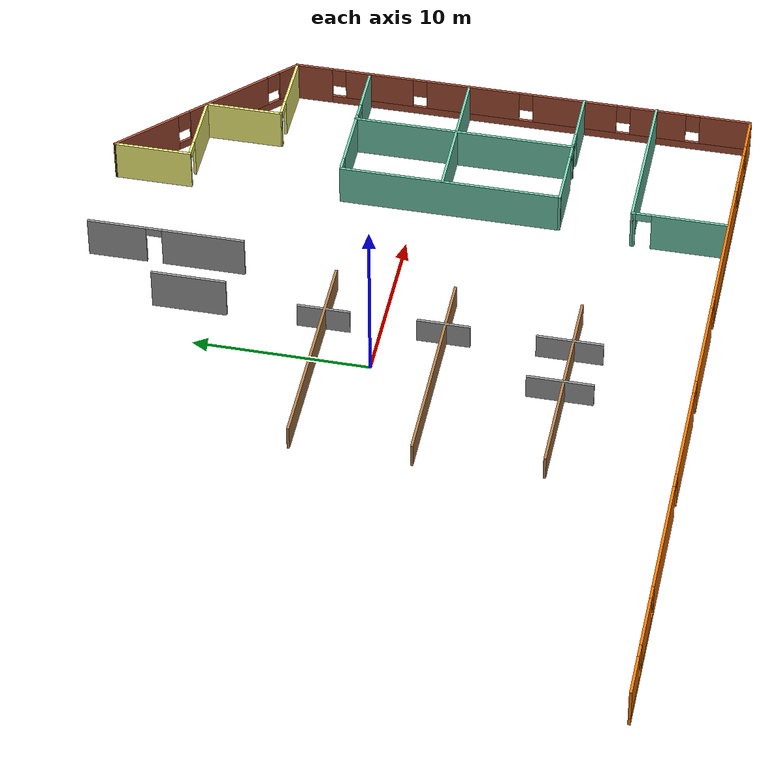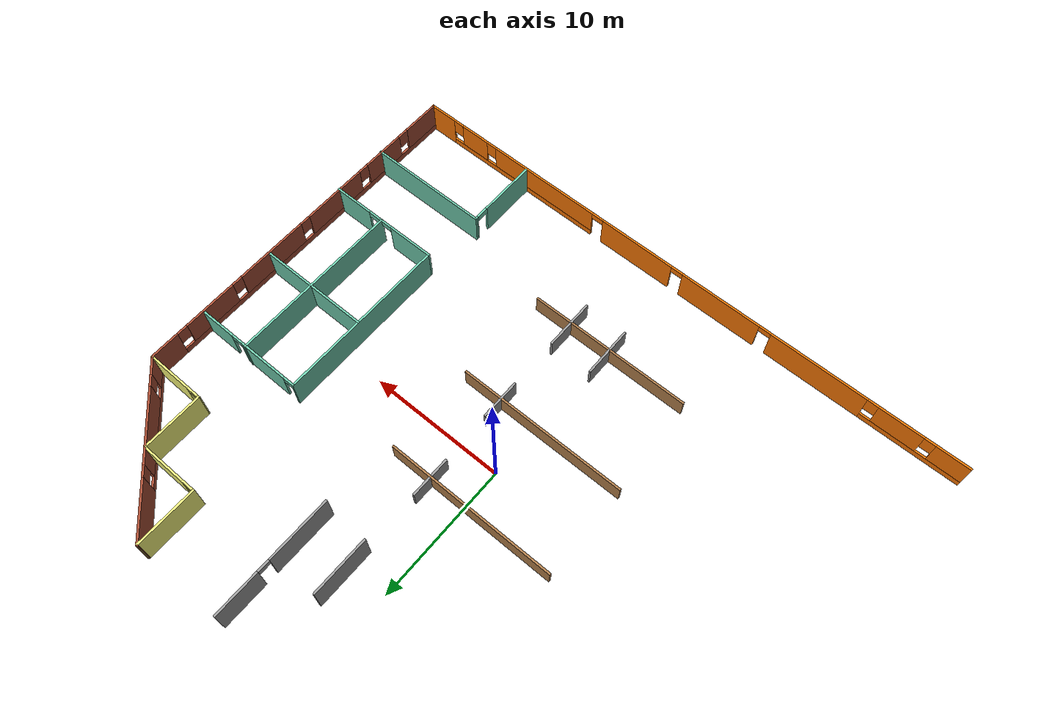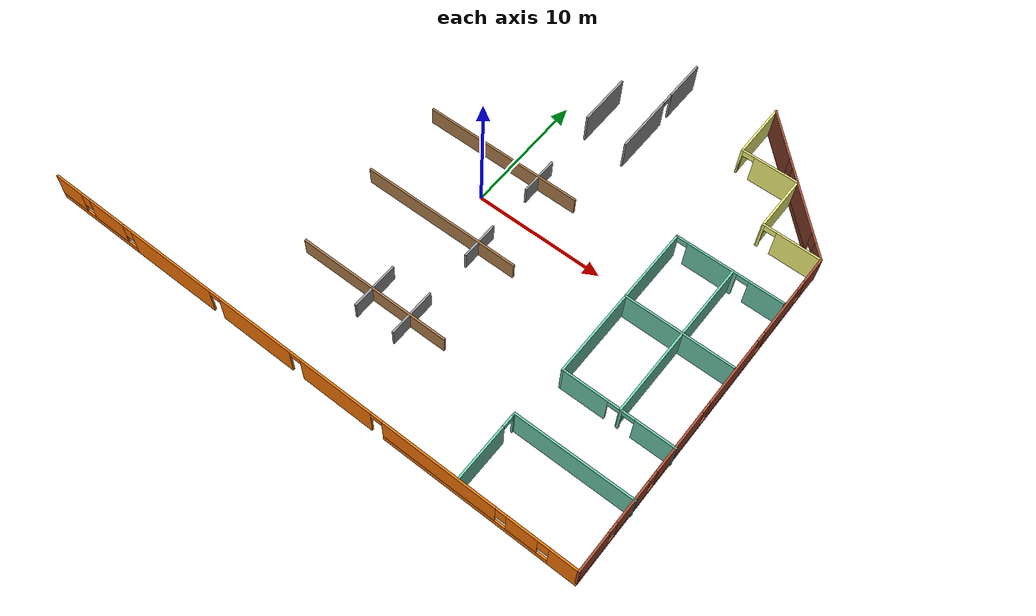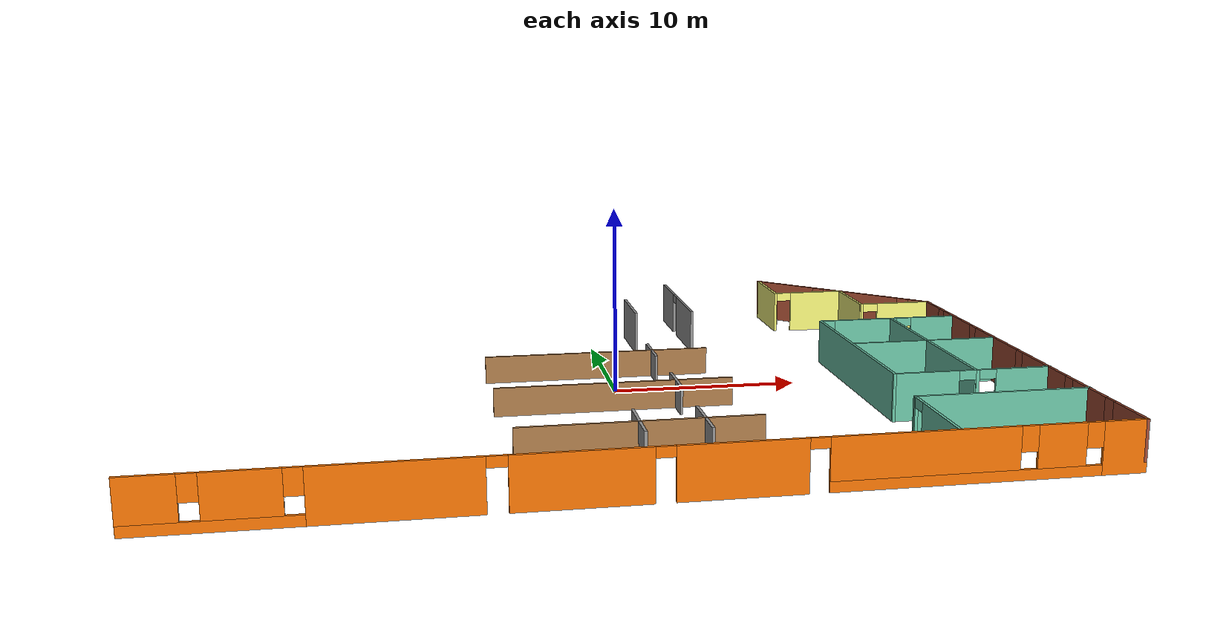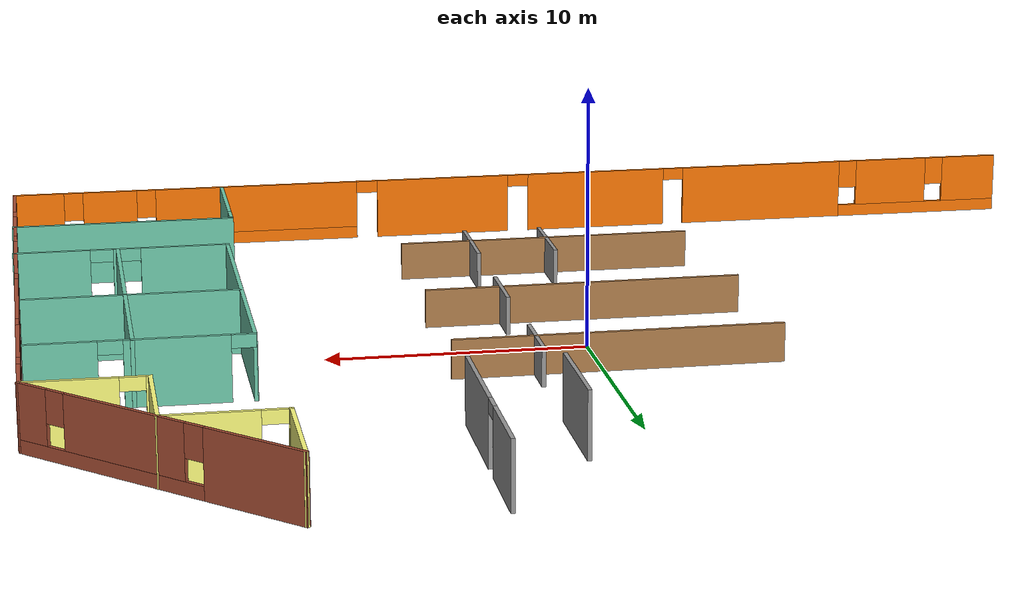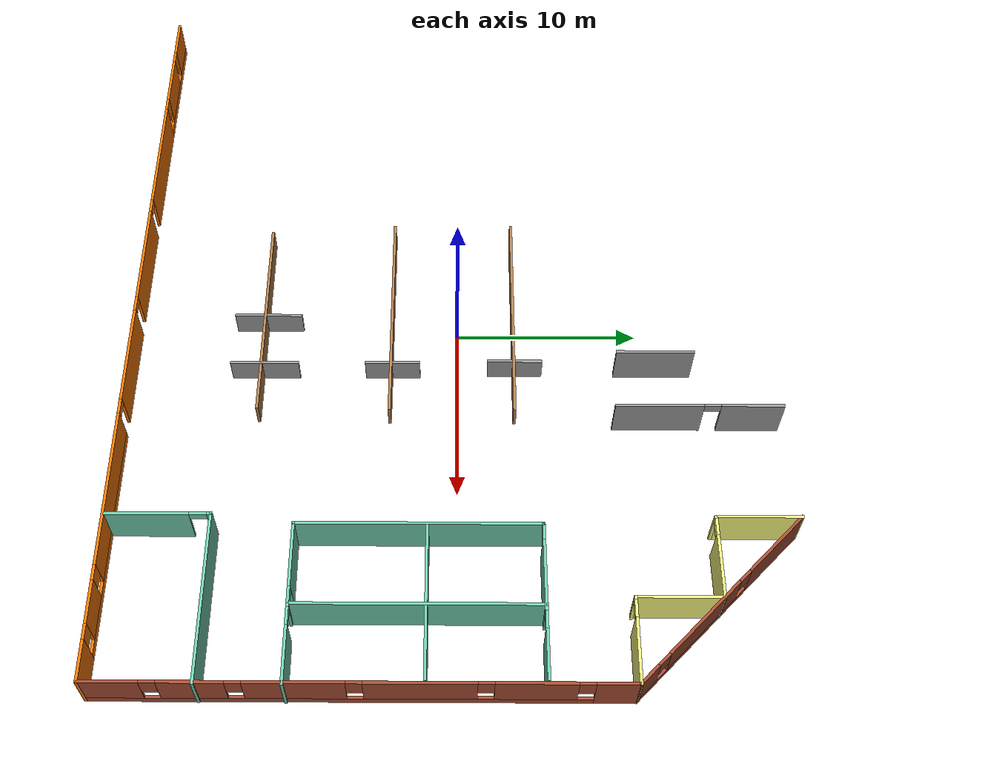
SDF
<sdf version="1.6">
 <model name="Building">
  <pose>-0.640949 -0.136495 0 0 -0 0</pose>
  <link name="Wall_17">
   <collision name="Wall_17_Collision">
    <geometry><box><size>9 0.15 2.5</size></box></geometry>
    <pose>0 0 1.25 0 -0 0</pose>
   </collision>
   <visual name="Wall_17_Visual">
    <pose>0 0 1.25 0 -0 0</pose>
    <geometry><box><size>9 0.15 2.5</size></box></geometry>
    <material>
     <script><uri>file://media/materials/scripts/gazebo.material</uri><name>Gazebo/Grey</name></script>
     <ambient>0.435294 0.796078 0.67451 1</ambient>
    </material>
    <meta><layer>0</layer></meta>
   </visual>
   <pose>17.4874 -12.3073 0 0 -0 3.14159</pose>
  </link>
  <link name="Wall_18">
   <pose>13.0624 -14.9823 0 0 0 -1.5708</pose>
   <visual name="Wall_18_Visual_0">
    <pose>-2.60998 0 1.25 0 -0 0</pose>
    <geometry><box><size>0.280034 0.15 2.5</size></box></geometry>
    <material>
     <script><uri>file://media/materials/scripts/gazebo.material</uri><name>Gazebo/Grey</name></script>
     <ambient>0.435294 0.796078 0.67451 1</ambient>
    </material>
    <meta><layer>0</layer></meta>
   </visual>
   <collision name="Wall_18_Collision_0">
    <geometry><box><size>0.280034 0.15 2.5</size></box></geometry>
    <pose>-2.60998 0 1.25 0 -0 0</pose>
   </collision>
   <visual name="Wall_18_Visual_1">
    <pose>0.590017 0 1.25 0 -0 0</pose>
    <geometry><box><size>4.31997 0.15 2.5</size></box></geometry>
    <material>
     <script><uri>file://media/materials/scripts/gazebo.material</uri><name>Gazebo/Grey</name></script>
     <ambient>0.435294 0.796078 0.67451 1</ambient>
    </material>
    <meta><layer>0</layer></meta>
   </visual>
   <collision name="Wall_18_Collision_1">
    <geometry><box><size>4.31997 0.15 2.5</size></box></geometry>
    <pose>0.590017 0 1.25 0 -0 0</pose>
   </collision>
   <visual name="Wall_18_Visual_2">
    <pose>-2.01997 0 2.25 0 -0 0</pose>
    <geometry><box><size>0.9 0.15 0.5</size></box></geometry>
    <material>
     <script><uri>file://media/materials/scripts/gazebo.material</uri><name>Gazebo/Grey</name></script>
     <ambient>0.435294 0.796078 0.67451 1</ambient>
    </material>
    <meta><layer>0</layer></meta>
   </visual>
   <collision name="Wall_18_Collision_2">
    <geometry><box><size>0.9 0.15 0.5</size></box></geometry>
    <pose>-2.01997 0 2.25 0 -0 0</pose>
   </collision>
  </link>
  <link name="Wall_2">
   <pose>17.4946 13.197 0 0 0 -0.785398</pose>
   <visual name="Wall_2_Visual_0">
    <pose>-4.12695 0 1.25 0 -0 0</pose>
    <geometry><box><size>4.24611 0.15 2.5</size></box></geometry>
    <material>
     <script><uri>file://media/materials/scripts/gazebo.material</uri><name>Gazebo/Bricks</name></script>
     <ambient>0.333333 0.666667 1 1</ambient>
    </material>
    <meta><layer>0</layer></meta>
   </visual>
   <collision name="Wall_2_Collision_0">
    <geometry><box><size>4.24611 0.15 2.5</size></box></geometry>
    <pose>-4.12695 0 1.25 0 -0 0</pose>
   </collision>
   <visual name="Wall_2_Visual_1">
    <pose>2.12305 0 0.25 0 -0 0</pose>
    <geometry><box><size>8.25389 0.15 0.5</size></box></geometry>
    <material>
     <script><uri>file://media/materials/scripts/gazebo.material</uri><name>Gazebo/Bricks</name></script>
     <ambient>0.333333 0.666667 1 1</ambient>
    </material>
    <meta><layer>0</layer></meta>
   </visual>
   <collision name="Wall_2_Collision_1">
    <geometry><box><size>8.25389 0.15 0.5</size></box></geometry>
    <pose>2.12305 0 0.25 0 -0 0</pose>
   </collision>
   <visual name="Wall_2_Visual_2">
    <pose>1.43985 0 1.5 0 -0 0</pose>
    <geometry><box><size>5.28749 0.15 2</size></box></geometry>
    <material>
     <script><uri>file://media/materials/scripts/gazebo.material</uri><name>Gazebo/Bricks</name></script>
     <ambient>0.333333 0.666667 1 1</ambient>
    </material>
    <meta><layer>0</layer></meta>
   </visual>
   <collision name="Wall_2_Collision_2">
    <geometry><box><size>5.28749 0.15 2</size></box></geometry>
    <pose>1.43985 0 1.5 0 -0 0</pose>
   </collision>
   <visual name="Wall_2_Visual_3">
    <pose>5.5668 0 1.5 0 -0 0</pose>
    <geometry><box><size>1.3664 0.15 2</size></box></geometry>
    <material>
     <script><uri>file://media/materials/scripts/gazebo.material</uri><name>Gazebo/Bricks</name></script>
     <ambient>0.333333 0.666667 1 1</ambient>
    </material>
    <meta><layer>0</layer></meta>
   </visual>
   <collision name="Wall_2_Collision_3">
    <geometry><box><size>1.3664 0.15 2</size></box></geometry>
    <pose>5.5668 0 1.5 0 -0 0</pose>
   </collision>
   <visual name="Wall_2_Visual_4">
    <pose>-1.60389 0 1.9 0 -0 0</pose>
    <geometry><box><size>0.8 0.15 1.2</size></box></geometry>
    <material>
     <script><uri>file://media/materials/scripts/gazebo.material</uri><name>Gazebo/Bricks</name></script>
     <ambient>0.333333 0.666667 1 1</ambient>
    </material>
    <meta><layer>0</layer></meta>
   </visual>
   <collision name="Wall_2_Collision_4">
    <geometry><box><size>0.8 0.15 1.2</size></box></geometry>
    <pose>-1.60389 0 1.9 0 -0 0</pose>
   </collision>
   <visual name="Wall_2_Visual_5">
    <pose>4.4836 0 1.9 0 -0 0</pose>
    <geometry><box><size>0.8 0.15 1.2</size></box></geometry>
    <material>
     <script><uri>file://media/materials/scripts/gazebo.material</uri><name>Gazebo/Bricks</name></script>
     <ambient>0.333333 0.666667 1 1</ambient>
    </material>
    <meta><layer>0</layer></meta>
   </visual>
   <collision name="Wall_2_Collision_5">
    <geometry><box><size>0.8 0.15 1.2</size></box></geometry>
    <pose>4.4836 0 1.9 0 -0 0</pose>
   </collision>
  </link>
  <link name="Wall_25">
   <collision name="Wall_25_Collision">
    <geometry><box><size>4.5 0.15 2.5</size></box></geometry>
    <pose>0 0 1.25 0 -0 0</pose>
   </collision>
   <visual name="Wall_25_Visual">
    <pose>0 0 1.25 0 -0 0</pose>
    <geometry><box><size>4.5 0.15 2.5</size></box></geometry>
    <material>
     <script><uri>file://media/materials/scripts/gazebo.material</uri><name>Gazebo/Grey</name></script>
     <ambient>1 1 0.498039 1</ambient>
    </material>
    <meta><layer>0</layer></meta>
   </visual>
   <pose>13.1282 15.3884 0 0 0 -1.5708</pose>
  </link>
  <link name="Wall_26">
   <pose>15.3032 13.2134 0 0 -0 0</pose>
   <visual name="Wall_26_Visual_0">
    <pose>-2.16279 0 1.25 0 -0 0</pose>
    <geometry><box><size>0.174413 0.15 2.5</size></box></geometry>
    <material>
     <script><uri>file://media/materials/scripts/gazebo.material</uri><name>Gazebo/Grey</name></script>
     <ambient>1 1 0.498039 1</ambient>
    </material>
    <meta><layer>0</layer></meta>
   </visual>
   <collision name="Wall_26_Collision_0">
    <geometry><box><size>0.174413 0.15 2.5</size></box></geometry>
    <pose>-2.16279 0 1.25 0 -0 0</pose>
   </collision>
   <visual name="Wall_26_Visual_1">
    <pose>0.537207 0 1.25 0 -0 0</pose>
    <geometry><box><size>3.42559 0.15 2.5</size></box></geometry>
    <material>
     <script><uri>file://media/materials/scripts/gazebo.material</uri><name>Gazebo/Grey</name></script>
     <ambient>1 1 0.498039 1</ambient>
    </material>
    <meta><layer>0</layer></meta>
   </visual>
   <collision name="Wall_26_Collision_1">
    <geometry><box><size>3.42559 0.15 2.5</size></box></geometry>
    <pose>0.537207 0 1.25 0 -0 0</pose>
   </collision>
   <visual name="Wall_26_Visual_2">
    <pose>-1.62559 0 2.25 0 -0 0</pose>
    <geometry><box><size>0.9 0.15 0.5</size></box></geometry>
    <material>
     <script><uri>file://media/materials/scripts/gazebo.material</uri><name>Gazebo/Grey</name></script>
     <ambient>1 1 0.498039 1</ambient>
    </material>
    <meta><layer>0</layer></meta>
   </visual>
   <collision name="Wall_26_Collision_2">
    <geometry><box><size>0.9 0.15 0.5</size></box></geometry>
    <pose>-1.62559 0 2.25 0 -0 0</pose>
   </collision>
  </link>
  <link name="Wall_27">
   <collision name="Wall_27_Collision">
    <geometry><box><size>4.5 0.15 2.5</size></box></geometry>
    <pose>0 0 1.25 0 -0 0</pose>
   </collision>
   <visual name="Wall_27_Visual">
    <pose>0 0 1.25 0 -0 0</pose>
    <geometry><box><size>4.5 0.15 2.5</size></box></geometry>
    <material>
     <script><uri>file://media/materials/scripts/gazebo.material</uri><name>Gazebo/Grey</name></script>
     <ambient>1 1 0.498039 1</ambient>
    </material>
    <meta><layer>0</layer></meta>
   </visual>
   <pose>17.4782 11.0384 0 0 0 -1.5708</pose>
  </link>
  <link name="Wall_28">
   <pose>19.6696 8.84697 0 0 0 -0.007477</pose>
   <visual name="Wall_28_Visual_0">
    <pose>-2.15512 0 1.25 0 -0 0</pose>
    <geometry><box><size>0.222645 0.15 2.5</size></box></geometry>
    <material>
     <script><uri>file://media/materials/scripts/gazebo.material</uri><name>Gazebo/Grey</name></script>
     <ambient>1 1 0.498039 1</ambient>
    </material>
    <meta><layer>0</layer></meta>
   </visual>
   <collision name="Wall_28_Collision_0">
    <geometry><box><size>0.222645 0.15 2.5</size></box></geometry>
    <pose>-2.15512 0 1.25 0 -0 0</pose>
   </collision>
   <visual name="Wall_28_Visual_1">
    <pose>0.561323 0 1.25 0 -0 0</pose>
    <geometry><box><size>3.41025 0.15 2.5</size></box></geometry>
    <material>
     <script><uri>file://media/materials/scripts/gazebo.material</uri><name>Gazebo/Grey</name></script>
     <ambient>1 1 0.498039 1</ambient>
    </material>
    <meta><layer>0</layer></meta>
   </visual>
   <collision name="Wall_28_Collision_1">
    <geometry><box><size>3.41025 0.15 2.5</size></box></geometry>
    <pose>0.561323 0 1.25 0 -0 0</pose>
   </collision>
   <visual name="Wall_28_Visual_2">
    <pose>-1.5938 0 2.25 0 -0 0</pose>
    <geometry><box><size>0.9 0.15 0.5</size></box></geometry>
    <material>
     <script><uri>file://media/materials/scripts/gazebo.material</uri><name>Gazebo/Grey</name></script>
     <ambient>1 1 0.498039 1</ambient>
    </material>
    <meta><layer>0</layer></meta>
   </visual>
   <collision name="Wall_28_Collision_2">
    <geometry><box><size>0.9 0.15 0.5</size></box></geometry>
    <pose>-1.5938 0 2.25 0 -0 0</pose>
   </collision>
  </link>
  <link name="Wall_3">
   <pose>21.861 -4.46942 0 0 0 -1.5708</pose>
   <visual name="Wall_3_Visual_0">
    <pose>-12.2912 0 1.25 0 -0 0</pose>
    <geometry><box><size>2.16764 0.15 2.5</size></box></geometry>
    <material>
     <script><uri>file://media/materials/scripts/gazebo.material</uri><name>Gazebo/Bricks</name></script>
     <ambient>0.333333 0.666667 1 1</ambient>
    </material>
    <meta><layer>0</layer></meta>
   </visual>
   <collision name="Wall_3_Collision_0">
    <geometry><box><size>2.16764 0.15 2.5</size></box></geometry>
    <pose>-12.2912 0 1.25 0 -0 0</pose>
   </collision>
   <visual name="Wall_3_Visual_1">
    <pose>1.08382 0 0.25 0 -0 0</pose>
    <geometry><box><size>24.5824 0.15 0.5</size></box></geometry>
    <material>
     <script><uri>file://media/materials/scripts/gazebo.material</uri><name>Gazebo/Bricks</name></script>
     <ambient>0.333333 0.666667 1 1</ambient>
    </material>
    <meta><layer>0</layer></meta>
   </visual>
   <collision name="Wall_3_Collision_1">
    <geometry><box><size>24.5824 0.15 0.5</size></box></geometry>
    <pose>1.08382 0 0.25 0 -0 0</pose>
   </collision>
   <visual name="Wall_3_Visual_2">
    <pose>-8.40981 0 1.5 0 -0 0</pose>
    <geometry><box><size>3.99511 0.15 2</size></box></geometry>
    <material>
     <script><uri>file://media/materials/scripts/gazebo.material</uri><name>Gazebo/Bricks</name></script>
     <ambient>0.333333 0.666667 1 1</ambient>
    </material>
    <meta><layer>0</layer></meta>
   </visual>
   <collision name="Wall_3_Collision_2">
    <geometry><box><size>3.99511 0.15 2</size></box></geometry>
    <pose>-8.40981 0 1.5 0 -0 0</pose>
   </collision>
   <visual name="Wall_3_Visual_3">
    <pose>-2.88127 0 1.5 0 -0 0</pose>
    <geometry><box><size>5.46198 0.15 2</size></box></geometry>
    <material>
     <script><uri>file://media/materials/scripts/gazebo.material</uri><name>Gazebo/Bricks</name></script>
     <ambient>0.333333 0.666667 1 1</ambient>
    </material>
    <meta><layer>0</layer></meta>
   </visual>
   <collision name="Wall_3_Collision_3">
    <geometry><box><size>5.46198 0.15 2</size></box></geometry>
    <pose>-2.88127 0 1.5 0 -0 0</pose>
   </collision>
   <visual name="Wall_3_Visual_4">
    <pose>3.10235 0 1.5 0 -0 0</pose>
    <geometry><box><size>4.90526 0.15 2</size></box></geometry>
    <material>
     <script><uri>file://media/materials/scripts/gazebo.material</uri><name>Gazebo/Bricks</name></script>
     <ambient>0.333333 0.666667 1 1</ambient>
    </material>
    <meta><layer>0</layer></meta>
   </visual>
   <collision name="Wall_3_Collision_4">
    <geometry><box><size>4.90526 0.15 2</size></box></geometry>
    <pose>3.10235 0 1.5 0 -0 0</pose>
   </collision>
   <visual name="Wall_3_Visual_5">
    <pose>7.97254 0 1.5 0 -0 0</pose>
    <geometry><box><size>3.23512 0.15 2</size></box></geometry>
    <material>
     <script><uri>file://media/materials/scripts/gazebo.material</uri><name>Gazebo/Bricks</name></script>
     <ambient>0.333333 0.666667 1 1</ambient>
    </material>
    <meta><layer>0</layer></meta>
   </visual>
   <collision name="Wall_3_Collision_5">
    <geometry><box><size>3.23512 0.15 2</size></box></geometry>
    <pose>7.97254 0 1.5 0 -0 0</pose>
   </collision>
   <visual name="Wall_3_Visual_6">
    <pose>11.8826 0 1.5 0 -0 0</pose>
    <geometry><box><size>2.9849 0.15 2</size></box></geometry>
    <material>
     <script><uri>file://media/materials/scripts/gazebo.material</uri><name>Gazebo/Bricks</name></script>
     <ambient>0.333333 0.666667 1 1</ambient>
    </material>
    <meta><layer>0</layer></meta>
   </visual>
   <collision name="Wall_3_Collision_6">
    <geometry><box><size>2.9849 0.15 2</size></box></geometry>
    <pose>11.8826 0 1.5 0 -0 0</pose>
   </collision>
   <visual name="Wall_3_Visual_7">
    <pose>-10.8074 0 1.9 0 -0 0</pose>
    <geometry><box><size>0.8 0.15 1.2</size></box></geometry>
    <material>
     <script><uri>file://media/materials/scripts/gazebo.material</uri><name>Gazebo/Bricks</name></script>
     <ambient>0.333333 0.666667 1 1</ambient>
    </material>
    <meta><layer>0</layer></meta>
   </visual>
   <collision name="Wall_3_Collision_7">
    <geometry><box><size>0.8 0.15 1.2</size></box></geometry>
    <pose>-10.8074 0 1.9 0 -0 0</pose>
   </collision>
   <visual name="Wall_3_Visual_8">
    <pose>-6.01226 0 1.9 0 -0 0</pose>
    <geometry><box><size>0.8 0.15 1.2</size></box></geometry>
    <material>
     <script><uri>file://media/materials/scripts/gazebo.material</uri><name>Gazebo/Bricks</name></script>
     <ambient>0.333333 0.666667 1 1</ambient>
    </material>
    <meta><layer>0</layer></meta>
   </visual>
   <collision name="Wall_3_Collision_8">
    <geometry><box><size>0.8 0.15 1.2</size></box></geometry>
    <pose>-6.01226 0 1.9 0 -0 0</pose>
   </collision>
   <visual name="Wall_3_Visual_9">
    <pose>0.249724 0 1.9 0 -0 0</pose>
    <geometry><box><size>0.8 0.15 1.2</size></box></geometry>
    <material>
     <script><uri>file://media/materials/scripts/gazebo.material</uri><name>Gazebo/Bricks</name></script>
     <ambient>0.333333 0.666667 1 1</ambient>
    </material>
    <meta><layer>0</layer></meta>
   </visual>
   <collision name="Wall_3_Collision_9">
    <geometry><box><size>0.8 0.15 1.2</size></box></geometry>
    <pose>0.249724 0 1.9 0 -0 0</pose>
   </collision>
   <visual name="Wall_3_Visual_10">
    <pose>5.95498 0 1.9 0 -0 0</pose>
    <geometry><box><size>0.8 0.15 1.2</size></box></geometry>
    <material>
     <script><uri>file://media/materials/scripts/gazebo.material</uri><name>Gazebo/Bricks</name></script>
     <ambient>0.333333 0.666667 1 1</ambient>
    </material>
    <meta><layer>0</layer></meta>
   </visual>
   <collision name="Wall_3_Collision_10">
    <geometry><box><size>0.8 0.15 1.2</size></box></geometry>
    <pose>5.95498 0 1.9 0 -0 0</pose>
   </collision>
   <visual name="Wall_3_Visual_11">
    <pose>9.9901 0 1.9 0 -0 0</pose>
    <geometry><box><size>0.8 0.15 1.2</size></box></geometry>
    <material>
     <script><uri>file://media/materials/scripts/gazebo.material</uri><name>Gazebo/Bricks</name></script>
     <ambient>0.333333 0.666667 1 1</ambient>
    </material>
    <meta><layer>0</layer></meta>
   </visual>
   <collision name="Wall_3_Collision_11">
    <geometry><box><size>0.8 0.15 1.2</size></box></geometry>
    <pose>9.9901 0 1.9 0 -0 0</pose>
   </collision>
  </link>
  <link name="Wall_32">
   <pose>6.59732 13.025 0 0 -0 1.5708</pose>
   <visual name="Wall_32_Visual_0">
    <pose>-2.13402 0 1.25 0 -0 0</pose>
    <geometry><box><size>4.73195 0.15 2.5</size></box></geometry>
    <material>
     <script><uri>file://media/materials/scripts/gazebo.material</uri><name>Gazebo/Grey</name></script>
     <ambient>1 1 1 1</ambient>
    </material>
    <meta><layer>0</layer></meta>
   </visual>
   <collision name="Wall_32_Collision_0">
    <geometry><box><size>4.73195 0.15 2.5</size></box></geometry>
    <pose>-2.13402 0 1.25 0 -0 0</pose>
   </collision>
   <visual name="Wall_32_Visual_1">
    <pose>2.81598 0 1.25 0 -0 0</pose>
    <geometry><box><size>3.36805 0.15 2.5</size></box></geometry>
    <material>
     <script><uri>file://media/materials/scripts/gazebo.material</uri><name>Gazebo/Grey</name></script>
     <ambient>1 1 1 1</ambient>
    </material>
    <meta><layer>0</layer></meta>
   </visual>
   <collision name="Wall_32_Collision_1">
    <geometry><box><size>3.36805 0.15 2.5</size></box></geometry>
    <pose>2.81598 0 1.25 0 -0 0</pose>
   </collision>
   <visual name="Wall_32_Visual_2">
    <pose>0.681952 0 2.25 0 -0 0</pose>
    <geometry><box><size>0.9 0.15 0.5</size></box></geometry>
    <material>
     <script><uri>file://media/materials/scripts/gazebo.material</uri><name>Gazebo/Grey</name></script>
     <ambient>1 1 1 1</ambient>
    </material>
    <meta><layer>0</layer></meta>
   </visual>
   <collision name="Wall_32_Collision_2">
    <geometry><box><size>0.9 0.15 0.5</size></box></geometry>
    <pose>0.681952 0 2.25 0 -0 0</pose>
   </collision>
  </link>
  <link name="Wall_4">
   <pose>0.061014 -17.7694 0 0 -0 3.14159</pose>
   <visual name="Wall_4_Visual_0">
    <pose>-20.7999 0 1.25 0 -0 0</pose>
    <geometry><box><size>2.15021 0.15 2.5</size></box></geometry>
    <material>
     <script><uri>file://media/materials/scripts/gazebo.material</uri><name>Gazebo/Grey</name></script>
     <ambient>0.996078 0.47451 0.0196078 1</ambient>
    </material>
    <meta><layer>0</layer></meta>
   </visual>
   <collision name="Wall_4_Collision_0">
    <geometry><box><size>2.15021 0.15 2.5</size></box></geometry>
    <pose>-20.7999 0 1.25 0 -0 0</pose>
   </collision>
   <visual name="Wall_4_Visual_1">
    <pose>-3.35989 0 1.25 0 -0 0</pose>
    <geometry><box><size>5.77239 0.15 2.5</size></box></geometry>
    <material>
     <script><uri>file://media/materials/scripts/gazebo.material</uri><name>Gazebo/Grey</name></script>
     <ambient>0.996078 0.47451 0.0196078 1</ambient>
    </material>
    <meta><layer>0</layer></meta>
   </visual>
   <collision name="Wall_4_Collision_1">
    <geometry><box><size>5.77239 0.15 2.5</size></box></geometry>
    <pose>-3.35989 0 1.25 0 -0 0</pose>
   </collision>
   <visual name="Wall_4_Visual_2">
    <pose>3.47524 0 1.25 0 -0 0</pose>
    <geometry><box><size>6.09787 0.15 2.5</size></box></geometry>
    <material>
     <script><uri>file://media/materials/scripts/gazebo.material</uri><name>Gazebo/Grey</name></script>
     <ambient>0.996078 0.47451 0.0196078 1</ambient>
    </material>
    <meta><layer>0</layer></meta>
   </visual>
   <collision name="Wall_4_Collision_2">
    <geometry><box><size>6.09787 0.15 2.5</size></box></geometry>
    <pose>3.47524 0 1.25 0 -0 0</pose>
   </collision>
   <visual name="Wall_4_Visual_3">
    <pose>11.0209 0 1.25 0 -0 0</pose>
    <geometry><box><size>7.1935 0.15 2.5</size></box></geometry>
    <material>
     <script><uri>file://media/materials/scripts/gazebo.material</uri><name>Gazebo/Grey</name></script>
     <ambient>0.996078 0.47451 0.0196078 1</ambient>
    </material>
    <meta><layer>0</layer></meta>
   </visual>
   <collision name="Wall_4_Collision_3">
    <geometry><box><size>7.1935 0.15 2.5</size></box></geometry>
    <pose>11.0209 0 1.25 0 -0 0</pose>
   </collision>
   <visual name="Wall_4_Visual_4">
    <pose>-13.4354 0 0.25 0 -0 0</pose>
    <geometry><box><size>12.5787 0.15 0.5</size></box></geometry>
    <material>
     <script><uri>file://media/materials/scripts/gazebo.material</uri><name>Gazebo/Grey</name></script>
     <ambient>0.996078 0.47451 0.0196078 1</ambient>
    </material>
    <meta><layer>0</layer></meta>
   </visual>
   <collision name="Wall_4_Collision_4">
    <geometry><box><size>12.5787 0.15 0.5</size></box></geometry>
    <pose>-13.4354 0 0.25 0 -0 0</pose>
   </collision>
   <visual name="Wall_4_Visual_5">
    <pose>18.2463 0 0.25 0 -0 0</pose>
    <geometry><box><size>7.25732 0.15 0.5</size></box></geometry>
    <material>
     <script><uri>file://media/materials/scripts/gazebo.material</uri><name>Gazebo/Grey</name></script>
     <ambient>0.996078 0.47451 0.0196078 1</ambient>
    </material>
    <meta><layer>0</layer></meta>
   </visual>
   <collision name="Wall_4_Collision_5">
    <geometry><box><size>7.25732 0.15 0.5</size></box></geometry>
    <pose>18.2463 0 0.25 0 -0 0</pose>
   </collision>
   <visual name="Wall_4_Visual_6">
    <pose>-17.7808 0 1.5 0 -0 0</pose>
    <geometry><box><size>2.28801 0.15 2</size></box></geometry>
    <material>
     <script><uri>file://media/materials/scripts/gazebo.material</uri><name>Gazebo/Grey</name></script>
     <ambient>0.996078 0.47451 0.0196078 1</ambient>
    </material>
    <meta><layer>0</layer></meta>
   </visual>
   <collision name="Wall_4_Collision_6">
    <geometry><box><size>2.28801 0.15 2</size></box></geometry>
    <pose>-17.7808 0 1.5 0 -0 0</pose>
   </collision>
   <visual name="Wall_4_Visual_7">
    <pose>-11.4914 0 1.5 0 -0 0</pose>
    <geometry><box><size>8.69069 0.15 2</size></box></geometry>
    <material>
     <script><uri>file://media/materials/scripts/gazebo.material</uri><name>Gazebo/Grey</name></script>
     <ambient>0.996078 0.47451 0.0196078 1</ambient>
    </material>
    <meta><layer>0</layer></meta>
   </visual>
   <collision name="Wall_4_Collision_7">
    <geometry><box><size>8.69069 0.15 2</size></box></geometry>
    <pose>-11.4914 0 1.5 0 -0 0</pose>
   </collision>
   <visual name="Wall_4_Visual_8">
    <pose>-11.4914 0 1.5 0 -0 0</pose>
    <geometry><box><size>8.69069 0.15 2</size></box></geometry>
    <material>
     <script><uri>file://media/materials/scripts/gazebo.material</uri><name>Gazebo/Grey</name></script>
     <ambient>0.996078 0.47451 0.0196078 1</ambient>
    </material>
    <meta><layer>0</layer></meta>
   </visual>
   <collision name="Wall_4_Collision_8">
    <geometry><box><size>8.69069 0.15 2</size></box></geometry>
    <pose>-11.4914 0 1.5 0 -0 0</pose>
   </collision>
   <visual name="Wall_4_Visual_9">
    <pose>17.0296 0 1.5 0 -0 0</pose>
    <geometry><box><size>3.22378 0.15 2</size></box></geometry>
    <material>
     <script><uri>file://media/materials/scripts/gazebo.material</uri><name>Gazebo/Grey</name></script>
     <ambient>0.996078 0.47451 0.0196078 1</ambient>
    </material>
    <meta><layer>0</layer></meta>
   </visual>
   <collision name="Wall_4_Collision_9">
    <geometry><box><size>3.22378 0.15 2</size></box></geometry>
    <pose>17.0296 0 1.5 0 -0 0</pose>
   </collision>
   <visual name="Wall_4_Visual_10">
    <pose>20.6582 0 1.5 0 -0 0</pose>
    <geometry><box><size>2.43355 0.15 2</size></box></geometry>
    <material>
     <script><uri>file://media/materials/scripts/gazebo.material</uri><name>Gazebo/Grey</name></script>
     <ambient>0.996078 0.47451 0.0196078 1</ambient>
    </material>
    <meta><layer>0</layer></meta>
   </visual>
   <collision name="Wall_4_Collision_10">
    <geometry><box><size>2.43355 0.15 2</size></box></geometry>
    <pose>20.6582 0 1.5 0 -0 0</pose>
   </collision>
   <visual name="Wall_4_Visual_11">
    <pose>-19.3248 0 1.9 0 -0 0</pose>
    <geometry><box><size>0.8 0.15 1.2</size></box></geometry>
    <material>
     <script><uri>file://media/materials/scripts/gazebo.material</uri><name>Gazebo/Grey</name></script>
     <ambient>0.996078 0.47451 0.0196078 1</ambient>
    </material>
    <meta><layer>0</layer></meta>
   </visual>
   <collision name="Wall_4_Collision_11">
    <geometry><box><size>0.8 0.15 1.2</size></box></geometry>
    <pose>-19.3248 0 1.9 0 -0 0</pose>
   </collision>
   <visual name="Wall_4_Visual_12">
    <pose>15.0177 0 1.9 0 -0 0</pose>
    <geometry><box><size>0.8 0.15 1.2</size></box></geometry>
    <material>
     <script><uri>file://media/materials/scripts/gazebo.material</uri><name>Gazebo/Grey</name></script>
     <ambient>0.996078 0.47451 0.0196078 1</ambient>
    </material>
    <meta><layer>0</layer></meta>
   </visual>
   <collision name="Wall_4_Collision_12">
    <geometry><box><size>0.8 0.15 1.2</size></box></geometry>
    <pose>15.0177 0 1.9 0 -0 0</pose>
   </collision>
   <visual name="Wall_4_Visual_13">
    <pose>-16.2368 0 1.9 0 -0 0</pose>
    <geometry><box><size>0.8 0.15 1.2</size></box></geometry>
    <material>
     <script><uri>file://media/materials/scripts/gazebo.material</uri><name>Gazebo/Grey</name></script>
     <ambient>0.996078 0.47451 0.0196078 1</ambient>
    </material>
    <meta><layer>0</layer></meta>
   </visual>
   <collision name="Wall_4_Collision_13">
    <geometry><box><size>0.8 0.15 1.2</size></box></geometry>
    <pose>-16.2368 0 1.9 0 -0 0</pose>
   </collision>
   <visual name="Wall_4_Visual_14">
    <pose>19.0415 0 1.9 0 -0 0</pose>
    <geometry><box><size>0.8 0.15 1.2</size></box></geometry>
    <material>
     <script><uri>file://media/materials/scripts/gazebo.material</uri><name>Gazebo/Grey</name></script>
     <ambient>0.996078 0.47451 0.0196078 1</ambient>
    </material>
    <meta><layer>0</layer></meta>
   </visual>
   <collision name="Wall_4_Collision_14">
    <geometry><box><size>0.8 0.15 1.2</size></box></geometry>
    <pose>19.0415 0 1.9 0 -0 0</pose>
   </collision>
   <visual name="Wall_4_Visual_15">
    <pose>-0.023695 0 2.25 0 -0 0</pose>
    <geometry><box><size>0.9 0.15 0.5</size></box></geometry>
    <material>
     <script><uri>file://media/materials/scripts/gazebo.material</uri><name>Gazebo/Grey</name></script>
     <ambient>0.996078 0.47451 0.0196078 1</ambient>
    </material>
    <meta><layer>0</layer></meta>
   </visual>
   <collision name="Wall_4_Collision_15">
    <geometry><box><size>0.9 0.15 0.5</size></box></geometry>
    <pose>-0.023695 0 2.25 0 -0 0</pose>
   </collision>
   <visual name="Wall_4_Visual_16">
    <pose>6.97418 0 2.25 0 -0 0</pose>
    <geometry><box><size>0.9 0.15 0.5</size></box></geometry>
    <material>
     <script><uri>file://media/materials/scripts/gazebo.material</uri><name>Gazebo/Grey</name></script>
     <ambient>0.996078 0.47451 0.0196078 1</ambient>
    </material>
    <meta><layer>0</layer></meta>
   </visual>
   <collision name="Wall_4_Collision_16">
    <geometry><box><size>0.9 0.15 0.5</size></box></geometry>
    <pose>6.97418 0 2.25 0 -0 0</pose>
   </collision>
   <visual name="Wall_4_Visual_17">
    <pose>-6.69609 0 2.25 0 -0 0</pose>
    <geometry><box><size>0.9 0.15 0.5</size></box></geometry>
    <material>
     <script><uri>file://media/materials/scripts/gazebo.material</uri><name>Gazebo/Grey</name></script>
     <ambient>0.996078 0.47451 0.0196078 1</ambient>
    </material>
    <meta><layer>0</layer></meta>
   </visual>
   <collision name="Wall_4_Collision_17">
    <geometry><box><size>0.9 0.15 0.5</size></box></geometry>
    <pose>-6.69609 0 2.25 0 -0 0</pose>
   </collision>
   <visual name="Wall_4_Visual_18">
    <pose>-6.69609 0 2.25 0 -0 0</pose>
    <geometry><box><size>0.9 0.15 0.5</size></box></geometry>
    <material>
     <script><uri>file://media/materials/scripts/gazebo.material</uri><name>Gazebo/Grey</name></script>
     <ambient>0.996078 0.47451 0.0196078 1</ambient>
    </material>
    <meta><layer>0</layer></meta>
   </visual>
   <collision name="Wall_4_Collision_18">
    <geometry><box><size>0.9 0.15 0.5</size></box></geometry>
    <pose>-6.69609 0 2.25 0 -0 0</pose>
   </collision>
  </link>
  <link name="Wall_41">
   <collision name="Wall_41_Collision">
    <geometry><box><size>4.25 0.15 2.5</size></box></geometry>
    <pose>0 0 1.25 0 -0 0</pose>
   </collision>
   <visual name="Wall_41_Visual">
    <pose>0 0 1.25 0 -0 0</pose>
    <geometry><box><size>4.25 0.15 2.5</size></box></geometry>
    <material>
     <script><uri>file://media/materials/scripts/gazebo.material</uri><name>Gazebo/Grey</name></script>
     <ambient>1 1 1 1</ambient>
    </material>
    <meta><layer>0</layer></meta>
   </visual>
   <pose>3.19712 10.9083 0 0 0 -1.5708</pose>
  </link>
  <link name="Wall_51">
   <pose>17.7374 -8.09634 0 0 -0 3.14159</pose>
   <visual name="Wall_51_Visual_0">
    <pose>-2.74149 0 1.25 0 -0 0</pose>
    <geometry><box><size>3.01701 0.15 2.5</size></box></geometry>
    <material>
     <script><uri>file://media/materials/scripts/gazebo.material</uri><name>Gazebo/Grey</name></script>
     <ambient>0.435294 0.796078 0.67451 1</ambient>
    </material>
    <meta><layer>0</layer></meta>
   </visual>
   <collision name="Wall_51_Collision_0">
    <geometry><box><size>3.01701 0.15 2.5</size></box></geometry>
    <pose>-2.74149 0 1.25 0 -0 0</pose>
   </collision>
   <visual name="Wall_51_Visual_1">
    <pose>-0.24245 0 1.25 0 -0 0</pose>
    <geometry><box><size>0.181072 0.15 2.5</size></box></geometry>
    <material>
     <script><uri>file://media/materials/scripts/gazebo.material</uri><name>Gazebo/Grey</name></script>
     <ambient>0.435294 0.796078 0.67451 1</ambient>
    </material>
    <meta><layer>0</layer></meta>
   </visual>
   <collision name="Wall_51_Collision_1">
    <geometry><box><size>0.181072 0.15 2.5</size></box></geometry>
    <pose>-0.24245 0 1.25 0 -0 0</pose>
   </collision>
   <visual name="Wall_51_Visual_2">
    <pose>2.49904 0 1.25 0 -0 0</pose>
    <geometry><box><size>3.50191 0.15 2.5</size></box></geometry>
    <material>
     <script><uri>file://media/materials/scripts/gazebo.material</uri><name>Gazebo/Grey</name></script>
     <ambient>0.435294 0.796078 0.67451 1</ambient>
    </material>
    <meta><layer>0</layer></meta>
   </visual>
   <collision name="Wall_51_Collision_2">
    <geometry><box><size>3.50191 0.15 2.5</size></box></geometry>
    <pose>2.49904 0 1.25 0 -0 0</pose>
   </collision>
   <visual name="Wall_51_Visual_3">
    <pose>-0.782986 0 2.25 0 -0 0</pose>
    <geometry><box><size>0.9 0.15 0.5</size></box></geometry>
    <material>
     <script><uri>file://media/materials/scripts/gazebo.material</uri><name>Gazebo/Grey</name></script>
     <ambient>0.435294 0.796078 0.67451 1</ambient>
    </material>
    <meta><layer>0</layer></meta>
   </visual>
   <collision name="Wall_51_Collision_3">
    <geometry><box><size>0.9 0.15 0.5</size></box></geometry>
    <pose>-0.782986 0 2.25 0 -0 0</pose>
   </collision>
   <visual name="Wall_51_Visual_4">
    <pose>0.298086 0 2.25 0 -0 0</pose>
    <geometry><box><size>0.9 0.15 0.5</size></box></geometry>
    <material>
     <script><uri>file://media/materials/scripts/gazebo.material</uri><name>Gazebo/Grey</name></script>
     <ambient>0.435294 0.796078 0.67451 1</ambient>
    </material>
    <meta><layer>0</layer></meta>
   </visual>
   <collision name="Wall_51_Collision_4">
    <geometry><box><size>0.9 0.15 0.5</size></box></geometry>
    <pose>0.298086 0 2.25 0 -0 0</pose>
   </collision>
  </link>
  <link name="Wall_52">
   <collision name="Wall_52_Collision">
    <geometry><box><size>12.75 0.15 2.5</size></box></geometry>
    <pose>0 0 1.25 0 -0 0</pose>
   </collision>
   <visual name="Wall_52_Visual">
    <pose>0 0 1.25 0 -0 0</pose>
    <geometry><box><size>12.75 0.15 2.5</size></box></geometry>
    <material>
     <script><uri>file://media/materials/scripts/gazebo.material</uri><name>Gazebo/Grey</name></script>
     <ambient>0.435294 0.796078 0.67451 1</ambient>
    </material>
    <meta><layer>0</layer></meta>
   </visual>
   <pose>13.5624 -1.79634 0 0 -0 1.5708</pose>
  </link>
  <link name="Wall_53">
   <pose>17.6124 4.50366 0 0 -0 0</pose>
   <visual name="Wall_53_Visual_0">
    <pose>-4.11059 0 1.25 0 -0 0</pose>
    <geometry><box><size>0.028819 0.15 2.5</size></box></geometry>
    <material>
     <script><uri>file://media/materials/scripts/gazebo.material</uri><name>Gazebo/Grey</name></script>
     <ambient>0.435294 0.796078 0.67451 1</ambient>
    </material>
    <meta><layer>0</layer></meta>
   </visual>
   <collision name="Wall_53_Collision_0">
    <geometry><box><size>0.028819 0.15 2.5</size></box></geometry>
    <pose>-4.11059 0 1.25 0 -0 0</pose>
   </collision>
   <visual name="Wall_53_Visual_1">
    <pose>-1.29794 0 1.25 0 -0 0</pose>
    <geometry><box><size>3.79648 0.15 2.5</size></box></geometry>
    <material>
     <script><uri>file://media/materials/scripts/gazebo.material</uri><name>Gazebo/Grey</name></script>
     <ambient>0.435294 0.796078 0.67451 1</ambient>
    </material>
    <meta><layer>0</layer></meta>
   </visual>
   <collision name="Wall_53_Collision_1">
    <geometry><box><size>3.79648 0.15 2.5</size></box></geometry>
    <pose>-1.29794 0 1.25 0 -0 0</pose>
   </collision>
   <visual name="Wall_53_Visual_2">
    <pose>2.81265 0 1.25 0 -0 0</pose>
    <geometry><box><size>2.6247 0.15 2.5</size></box></geometry>
    <material>
     <script><uri>file://media/materials/scripts/gazebo.material</uri><name>Gazebo/Grey</name></script>
     <ambient>0.435294 0.796078 0.67451 1</ambient>
    </material>
    <meta><layer>0</layer></meta>
   </visual>
   <collision name="Wall_53_Collision_2">
    <geometry><box><size>2.6247 0.15 2.5</size></box></geometry>
    <pose>2.81265 0 1.25 0 -0 0</pose>
   </collision>
   <visual name="Wall_53_Visual_3">
    <pose>-3.64618 0 2.25 0 -0 0</pose>
    <geometry><box><size>0.9 0.15 0.5</size></box></geometry>
    <material>
     <script><uri>file://media/materials/scripts/gazebo.material</uri><name>Gazebo/Grey</name></script>
     <ambient>0.435294 0.796078 0.67451 1</ambient>
    </material>
    <meta><layer>0</layer></meta>
   </visual>
   <collision name="Wall_53_Collision_3">
    <geometry><box><size>0.9 0.15 0.5</size></box></geometry>
    <pose>-3.64618 0 2.25 0 -0 0</pose>
   </collision>
   <visual name="Wall_53_Visual_4">
    <pose>1.0503 0 2.25 0 -0 0</pose>
    <geometry><box><size>0.9 0.15 0.5</size></box></geometry>
    <material>
     <script><uri>file://media/materials/scripts/gazebo.material</uri><name>Gazebo/Grey</name></script>
     <ambient>0.435294 0.796078 0.67451 1</ambient>
    </material>
    <meta><layer>0</layer></meta>
   </visual>
   <collision name="Wall_53_Collision_4">
    <geometry><box><size>0.9 0.15 0.5</size></box></geometry>
    <pose>1.0503 0 2.25 0 -0 0</pose>
   </collision>
  </link>
  <link name="Wall_55">
   <collision name="Wall_55_Collision">
    <geometry><box><size>12.75 0.15 2.5</size></box></geometry>
    <pose>0 0 1.25 0 -0 0</pose>
   </collision>
   <visual name="Wall_55_Visual">
    <pose>0 0 1.25 0 -0 0</pose>
    <geometry><box><size>12.75 0.15 2.5</size></box></geometry>
    <material>
     <script><uri>file://media/materials/scripts/gazebo.material</uri><name>Gazebo/Grey</name></script>
     <ambient>0.435294 0.796078 0.67451 1</ambient>
    </material>
    <meta><layer>0</layer></meta>
   </visual>
   <pose>17.8886 -1.76355 0 0 0 -1.5708</pose>
  </link>
  <link name="Wall_57">
   <collision name="Wall_57_Collision">
    <geometry><box><size>8.25 0.15 2.5</size></box></geometry>
    <pose>0 0 1.25 0 -0 0</pose>
   </collision>
   <visual name="Wall_57_Visual">
    <pose>0 0 1.25 0 -0 0</pose>
    <geometry><box><size>8.25 0.15 2.5</size></box></geometry>
    <material>
     <script><uri>file://media/materials/scripts/gazebo.material</uri><name>Gazebo/Grey</name></script>
     <ambient>0.435294 0.796078 0.67451 1</ambient>
    </material>
    <meta><layer>0</layer></meta>
   </visual>
   <pose>17.6341 -1.35885 0 0 -0 0</pose>
  </link>
  <link name="Wall_64">
   <collision name="Wall_64_Collision">
    <geometry><box><size>12.5704 0.15 1.5</size></box></geometry>
    <pose>0 0 0.75 0 -0 0</pose>
   </collision>
   <visual name="Wall_64_Visual">
    <pose>0 0 0.75 0 -0 0</pose>
    <geometry><box><size>12.5704 0.15 1.5</size></box></geometry>
    <material>
     <script><uri>file://media/materials/scripts/gazebo.material</uri><name>Gazebo/Wood</name></script>
     <ambient>0.921569 0.807843 0.615686 1</ambient>
    </material>
    <meta><layer>0</layer></meta>
   </visual>
   <pose>0.052128 3.23849 0 0 -0 3.14159</pose>
  </link>
  <link name="Wall_71">
   <collision name="Wall_71_Collision">
    <geometry><box><size>3 0.15 1.5</size></box></geometry>
    <pose>0 0 0.75 0 -0 0</pose>
   </collision>
   <visual name="Wall_71_Visual">
    <pose>0 0 0.75 0 -0 0</pose>
    <geometry><box><size>3 0.15 1.5</size></box></geometry>
    <material>
     <script><uri>file://media/materials/scripts/gazebo.material</uri><name>Gazebo/Grey</name></script>
     <ambient>1 1 1 1</ambient>
    </material>
    <meta><layer>0</layer></meta>
   </visual>
   <pose>3.18895 3.2975 0 0 0 -1.5708</pose>
  </link>
  <link name="Wall_74">
   <collision name="Wall_74_Collision">
    <geometry><box><size>12.5 0.15 1.5</size></box></geometry>
    <pose>0 0 0.75 0 -0 0</pose>
   </collision>
   <visual name="Wall_74_Visual">
    <pose>0 0 0.75 0 -0 0</pose>
    <geometry><box><size>12.5 0.15 1.5</size></box></geometry>
    <material>
     <script><uri>file://media/materials/scripts/gazebo.material</uri><name>Gazebo/Wood</name></script>
     <ambient>0.921569 0.807843 0.615686 1</ambient>
    </material>
    <meta><layer>0</layer></meta>
   </visual>
   <pose>0.037949 -3.51851 0 0 -0 0</pose>
  </link>
  <link name="Wall_81">
   <collision name="Wall_81_Collision">
    <geometry><box><size>3 0.15 1.5</size></box></geometry>
    <pose>0 0 0.75 0 -0 0</pose>
   </collision>
   <visual name="Wall_81_Visual">
    <pose>0 0 0.75 0 -0 0</pose>
    <geometry><box><size>3 0.15 1.5</size></box></geometry>
    <material>
     <script><uri>file://media/materials/scripts/gazebo.material</uri><name>Gazebo/Grey</name></script>
     <ambient>1 1 1 1</ambient>
    </material>
    <meta><layer>0</layer></meta>
   </visual>
   <pose>3.30195 -3.4215 0 0 0 -1.5708</pose>
  </link>
  <link name="Wall_84">
   <collision name="Wall_84_Collision">
    <geometry><box><size>12 0.15 1.5</size></box></geometry>
    <pose>0 0 0.75 0 -0 0</pose>
   </collision>
   <visual name="Wall_84_Visual">
    <pose>0 0 0.75 0 -0 0</pose>
    <geometry><box><size>12 0.15 1.5</size></box></geometry>
    <material>
     <script><uri>file://media/materials/scripts/gazebo.material</uri><name>Gazebo/Wood</name></script>
     <ambient>0.921569 0.807843 0.615686 1</ambient>
    </material>
    <meta><layer>0</layer></meta>
   </visual>
   <pose>0.233944 -10.6435 0 0 -0 0</pose>
  </link>
  <link name="Wall_88">
   <collision name="Wall_88_Collision">
    <geometry><box><size>3.75 0.15 1.5</size></box></geometry>
    <pose>0 0 0.75 0 -0 0</pose>
   </collision>
   <visual name="Wall_88_Visual">
    <pose>0 0 0.75 0 -0 0</pose>
    <geometry><box><size>3.75 0.15 1.5</size></box></geometry>
    <material>
     <script><uri>file://media/materials/scripts/gazebo.material</uri><name>Gazebo/Grey</name></script>
     <ambient>1 1 1 1</ambient>
    </material>
    <meta><layer>0</layer></meta>
   </visual>
   <pose>0.166949 -10.4515 0 0 0 -1.5708</pose>
  </link>
  <link name="Wall_90">
   <collision name="Wall_90_Collision">
    <geometry><box><size>3.75 0.15 1.5</size></box></geometry>
    <pose>0 0 0.75 0 -0 0</pose>
   </collision>
   <visual name="Wall_90_Visual">
    <pose>0 0 0.75 0 -0 0</pose>
    <geometry><box><size>3.75 0.15 1.5</size></box></geometry>
    <material>
     <script><uri>file://media/materials/scripts/gazebo.material</uri><name>Gazebo/Grey</name></script>
     <ambient>1 1 1 1</ambient>
    </material>
    <meta><layer>0</layer></meta>
   </visual>
   <pose>3.33495 -10.4506 0 0 0 -1.5708</pose>
  </link>
  <static>1</static>
 </model>
</sdf>
